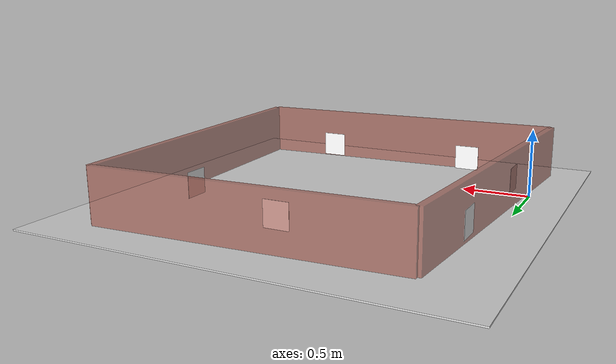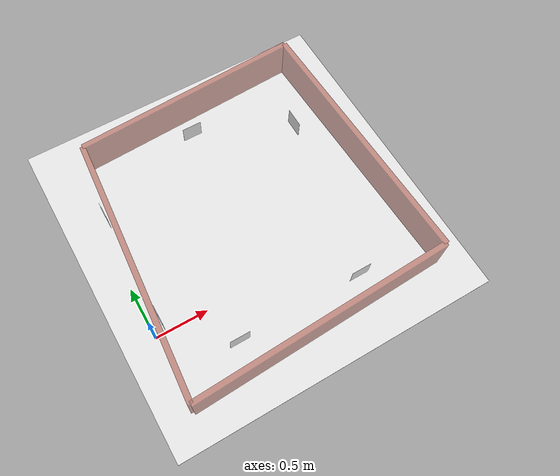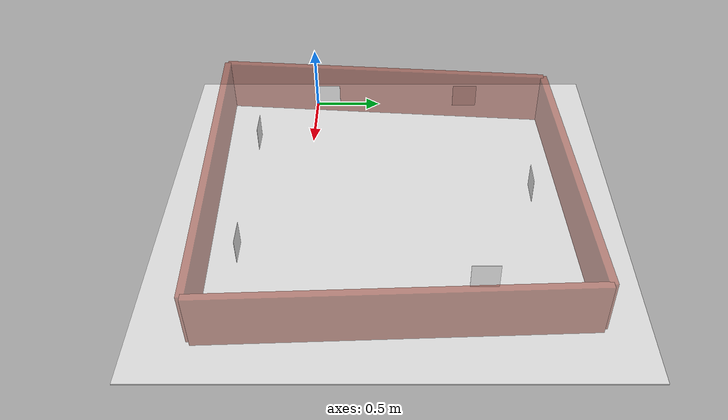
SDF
<sdf version="1.8">
  <world name="vgr_field_active">
    <plugin filename="libignition-gazebo-physics-system.so" name="ignition::gazebo::systems::Physics" />
    <plugin filename="libignition-gazebo-user-commands-system.so" name="ignition::gazebo::systems::UserCommands" />
    <plugin filename="libignition-gazebo-scene-broadcaster-system.so" name="ignition::gazebo::systems::SceneBroadcaster" />
    <plugin filename="libignition-gazebo-sensors-system.so" name="ignition::gazebo::systems::Sensors">
      <render_engine>ogre2</render_engine>
    </plugin>
    <light type="directional" name="sun">
      <cast_shadows>true</cast_shadows>
      <pose>0 0 10 0 0 0</pose>
      <diffuse>0.9 0.9 0.9 1</diffuse>
      <specular>0.2 0.2 0.2 1</specular>
      <direction>-0.4 0.2 -0.9</direction>
    </light>
    <model name="field_floor">
      <static>true</static>
      <link name="field_floor_link">
        <pose>1.25 0.6 -0.005 0 0 0</pose>
        <collision name="field_floor_collision">
          <geometry>
            <box>
              <size>3.1 3.2 0.01</size>
            </box>
          </geometry>
        </collision>
        <visual name="field_floor_visual">
          <geometry>
            <box>
              <size>3.1 3.2 0.01</size>
            </box>
          </geometry>
          <material>
            <ambient>0.85 0.85 0.85 1</ambient>
            <diffuse>0.85 0.85 0.85 1</diffuse>
          </material>
        </visual>
      </link>
    </model>
    <model name="field_wall_0">
      <static>true</static>
      <link name="field_wall_0_link">
        <pose>1.25 -0.65 0.2 0 0 0.0399786871233</pose>
        <collision name="field_wall_0_collision">
          <geometry>
            <box>
              <size>2.50199920064 0.05 0.4</size>
            </box>
          </geometry>
        </collision>
        <visual name="field_wall_0_visual">
          <geometry>
            <box>
              <size>2.50199920064 0.05 0.4</size>
            </box>
          </geometry>
          <material>
            <ambient>0.62 0.26 0.2 0.55</ambient>
            <diffuse>0.62 0.26 0.2 0.55</diffuse>
          </material>
        </visual>
      </link>
    </model>
    <model name="field_wall_1">
      <static>true</static>
      <link name="field_wall_1_link">
        <pose>2.45 0.65 0.2 0 0 1.61077501392</pose>
        <collision name="field_wall_1_collision">
          <geometry>
            <box>
              <size>2.50199920064 0.05 0.4</size>
            </box>
          </geometry>
        </collision>
        <visual name="field_wall_1_visual">
          <geometry>
            <box>
              <size>2.50199920064 0.05 0.4</size>
            </box>
          </geometry>
          <material>
            <ambient>0.62 0.26 0.2 0.55</ambient>
            <diffuse>0.62 0.26 0.2 0.55</diffuse>
          </material>
        </visual>
      </link>
    </model>
    <model name="field_wall_2">
      <static>true</static>
      <link name="field_wall_2_link">
        <pose>1.3 1.85 0.2 0 0 -3.09616937417</pose>
        <collision name="field_wall_2_collision">
          <geometry>
            <box>
              <size>2.20227155455 0.05 0.4</size>
            </box>
          </geometry>
        </collision>
        <visual name="field_wall_2_visual">
          <geometry>
            <box>
              <size>2.20227155455 0.05 0.4</size>
            </box>
          </geometry>
          <material>
            <ambient>0.62 0.26 0.2 0.55</ambient>
            <diffuse>0.62 0.26 0.2 0.55</diffuse>
          </material>
        </visual>
      </link>
    </model>
    <model name="field_wall_3">
      <static>true</static>
      <link name="field_wall_3_link">
        <pose>0.1 0.55 0.2 0 0 -1.65062631251</pose>
        <collision name="field_wall_3_collision">
          <geometry>
            <box>
              <size>2.5079872408 0.05 0.4</size>
            </box>
          </geometry>
        </collision>
        <visual name="field_wall_3_visual">
          <geometry>
            <box>
              <size>2.5079872408 0.05 0.4</size>
            </box>
          </geometry>
          <material>
            <ambient>0.62 0.26 0.2 0.55</ambient>
            <diffuse>0.62 0.26 0.2 0.55</diffuse>
          </material>
        </visual>
      </link>
    </model>
    <include>
      <uri>model://field_marker_0</uri>
      <pose>0.1 0.1 0.15 0 0 0</pose>
    </include>
    <include>
      <uri>model://field_marker_1</uri>
      <pose>0.1 1.2 0.15 0 0 0</pose>
    </include>
    <include>
      <uri>model://field_marker_2</uri>
      <pose>1.2 1.6 0.15 0 0 -1.5707963268</pose>
    </include>
    <include>
      <uri>model://field_marker_3</uri>
      <pose>2.1 1.2 0.15 0 0 3.1415926536</pose>
    </include>
    <include>
      <uri>model://field_marker_4</uri>
      <pose>1.8 -0.4 0.15 0 0 1.5707963268</pose>
    </include>
    <include>
      <uri>model://field_marker_5</uri>
      <pose>0.6 -0.4 0.15 0 0 1.5707963268</pose>
    </include>
  </world>
</sdf>

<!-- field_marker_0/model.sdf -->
<sdf version="1.8">
  <model name="field_marker_0">
    <static>true</static>
    <link name="field_marker_0_link">
      <collision name="field_marker_0_collision">
        <geometry>
          <box>
            <size>0.002 0.1875 0.1875</size>
          </box>
        </geometry>
      </collision>
      <visual name="field_marker_0_visual">
        <geometry>
          <box>
            <size>0.002 0.1875 0.1875</size>
          </box>
        </geometry>
        <material>
          <ambient>1 1 1 1</ambient>
          <diffuse>1 1 1 1</diffuse>
          <specular>0 0 0 1</specular>
          <emissive>1 1 1 1</emissive>
          <pbr>
            <metal>
              <albedo_map>model://field_marker_0/materials/textures/field_marker_0.png</albedo_map>
              <emissive_map>model://field_marker_0/materials/textures/field_marker_0.png</emissive_map>
            </metal>
          </pbr>
        </material>
      </visual>
    </link>
  </model>
</sdf>

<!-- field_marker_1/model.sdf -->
<sdf version="1.8">
  <model name="field_marker_1">
    <static>true</static>
    <link name="field_marker_1_link">
      <collision name="field_marker_1_collision">
        <geometry>
          <box>
            <size>0.002 0.1875 0.1875</size>
          </box>
        </geometry>
      </collision>
      <visual name="field_marker_1_visual">
        <geometry>
          <box>
            <size>0.002 0.1875 0.1875</size>
          </box>
        </geometry>
        <material>
          <ambient>1 1 1 1</ambient>
          <diffuse>1 1 1 1</diffuse>
          <specular>0 0 0 1</specular>
          <emissive>1 1 1 1</emissive>
          <pbr>
            <metal>
              <albedo_map>model://field_marker_1/materials/textures/field_marker_1.png</albedo_map>
              <emissive_map>model://field_marker_1/materials/textures/field_marker_1.png</emissive_map>
            </metal>
          </pbr>
        </material>
      </visual>
    </link>
  </model>
</sdf>

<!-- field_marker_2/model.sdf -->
<sdf version="1.8">
  <model name="field_marker_2">
    <static>true</static>
    <link name="field_marker_2_link">
      <collision name="field_marker_2_collision">
        <geometry>
          <box>
            <size>0.002 0.1875 0.1875</size>
          </box>
        </geometry>
      </collision>
      <visual name="field_marker_2_visual">
        <geometry>
          <box>
            <size>0.002 0.1875 0.1875</size>
          </box>
        </geometry>
        <material>
          <ambient>1 1 1 1</ambient>
          <diffuse>1 1 1 1</diffuse>
          <specular>0 0 0 1</specular>
          <emissive>1 1 1 1</emissive>
          <pbr>
            <metal>
              <albedo_map>model://field_marker_2/materials/textures/field_marker_2.png</albedo_map>
              <emissive_map>model://field_marker_2/materials/textures/field_marker_2.png</emissive_map>
            </metal>
          </pbr>
        </material>
      </visual>
    </link>
  </model>
</sdf>

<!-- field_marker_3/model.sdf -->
<sdf version="1.8">
  <model name="field_marker_3">
    <static>true</static>
    <link name="field_marker_3_link">
      <collision name="field_marker_3_collision">
        <geometry>
          <box>
            <size>0.002 0.1875 0.1875</size>
          </box>
        </geometry>
      </collision>
      <visual name="field_marker_3_visual">
        <geometry>
          <box>
            <size>0.002 0.1875 0.1875</size>
          </box>
        </geometry>
        <material>
          <ambient>1 1 1 1</ambient>
          <diffuse>1 1 1 1</diffuse>
          <specular>0 0 0 1</specular>
          <emissive>1 1 1 1</emissive>
          <pbr>
            <metal>
              <albedo_map>model://field_marker_3/materials/textures/field_marker_3.png</albedo_map>
              <emissive_map>model://field_marker_3/materials/textures/field_marker_3.png</emissive_map>
            </metal>
          </pbr>
        </material>
      </visual>
    </link>
  </model>
</sdf>

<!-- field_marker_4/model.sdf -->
<sdf version="1.8">
  <model name="field_marker_4">
    <static>true</static>
    <link name="field_marker_4_link">
      <collision name="field_marker_4_collision">
        <geometry>
          <box>
            <size>0.002 0.1875 0.1875</size>
          </box>
        </geometry>
      </collision>
      <visual name="field_marker_4_visual">
        <geometry>
          <box>
            <size>0.002 0.1875 0.1875</size>
          </box>
        </geometry>
        <material>
          <ambient>1 1 1 1</ambient>
          <diffuse>1 1 1 1</diffuse>
          <specular>0 0 0 1</specular>
          <emissive>1 1 1 1</emissive>
          <pbr>
            <metal>
              <albedo_map>model://field_marker_4/materials/textures/field_marker_4.png</albedo_map>
              <emissive_map>model://field_marker_4/materials/textures/field_marker_4.png</emissive_map>
            </metal>
          </pbr>
        </material>
      </visual>
    </link>
  </model>
</sdf>

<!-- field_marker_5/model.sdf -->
<sdf version="1.8">
  <model name="field_marker_5">
    <static>true</static>
    <link name="field_marker_5_link">
      <collision name="field_marker_5_collision">
        <geometry>
          <box>
            <size>0.002 0.1875 0.1875</size>
          </box>
        </geometry>
      </collision>
      <visual name="field_marker_5_visual">
        <geometry>
          <box>
            <size>0.002 0.1875 0.1875</size>
          </box>
        </geometry>
        <material>
          <ambient>1 1 1 1</ambient>
          <diffuse>1 1 1 1</diffuse>
          <specular>0 0 0 1</specular>
          <emissive>1 1 1 1</emissive>
          <pbr>
            <metal>
              <albedo_map>model://field_marker_5/materials/textures/field_marker_5.png</albedo_map>
              <emissive_map>model://field_marker_5/materials/textures/field_marker_5.png</emissive_map>
            </metal>
          </pbr>
        </material>
      </visual>
    </link>
  </model>
</sdf>
